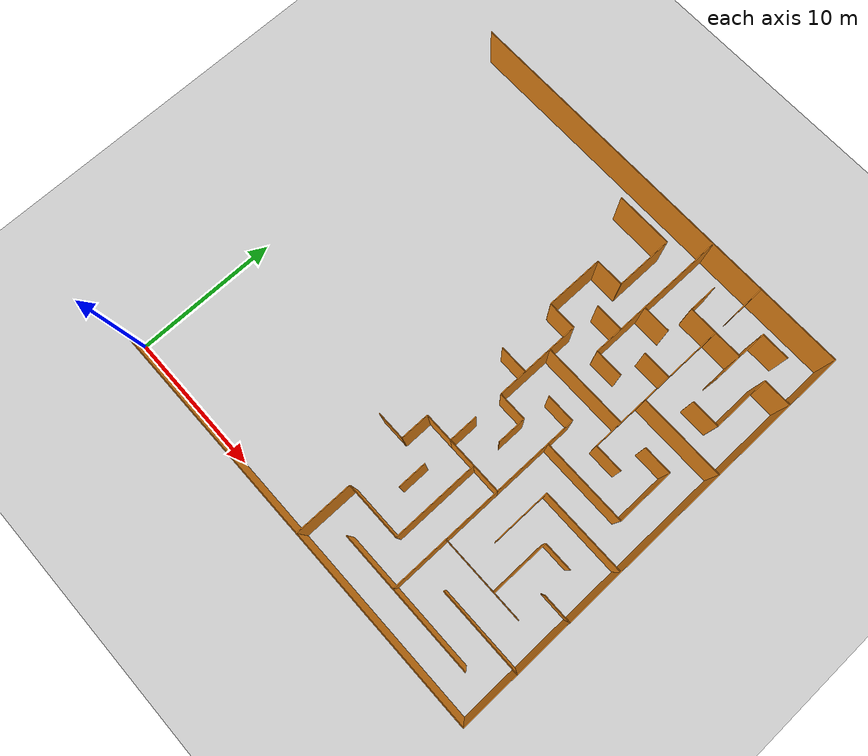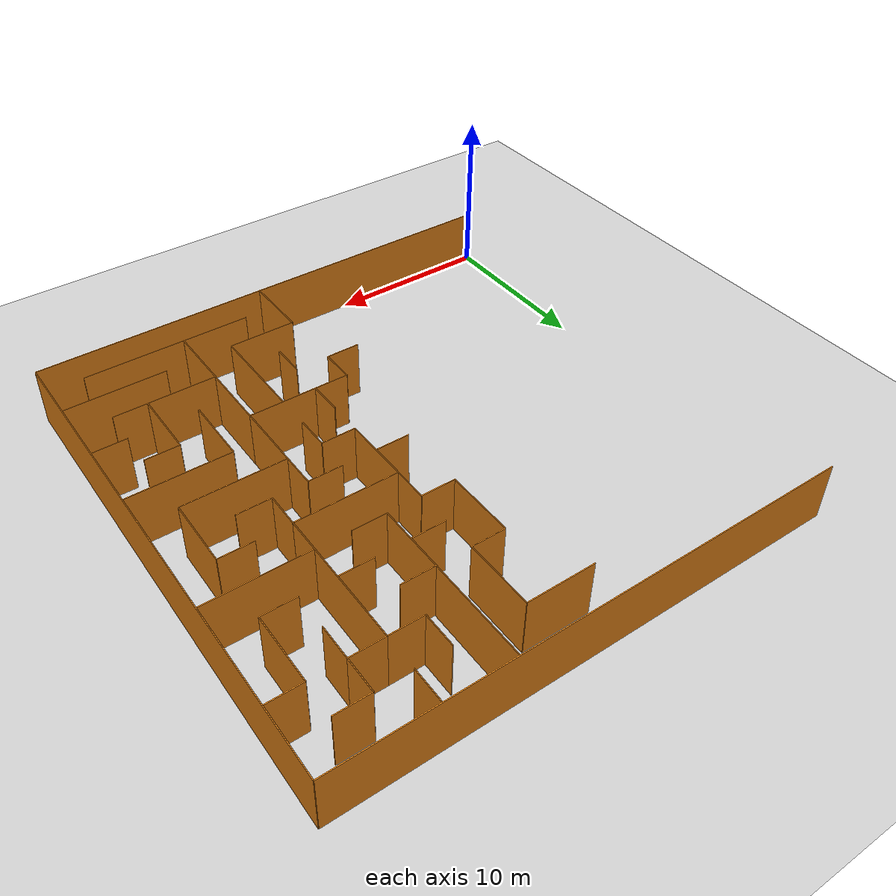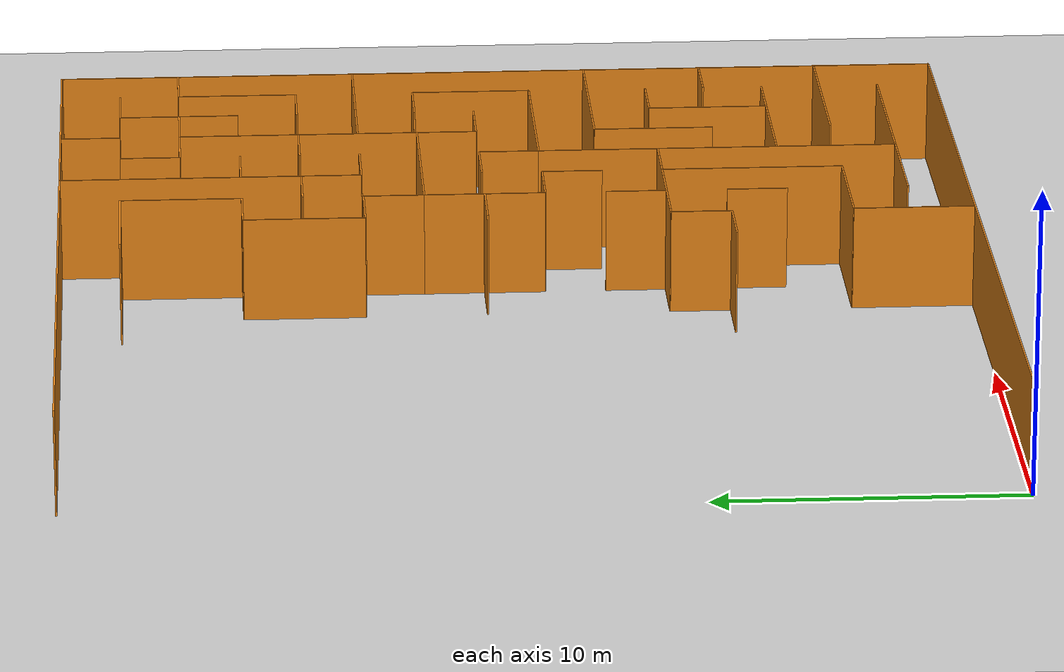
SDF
<sdf version="1.6">
 <world name="default">
  <model name="box_115">
   <pose>27.0 12.0 1.75 0 0 -3.141592653589793</pose>
   <link name="link">
    <inertial>
     <mass>1</mass>
     <inertia><ixx>0</ixx><ixy>0</ixy><ixz>0</ixz><iyy>0</iyy><iyz>0</iyz><izz>0</izz></inertia>
    </inertial>
    <collision name="collision"><geometry><box><size>6.0 0.05 3.5</size></box></geometry></collision>
    <visual name="visual">
     <geometry><box><size>6.0 0.05 3.5</size></box></geometry>
     <material>
      <script><name>Gazebo/Orange</name><uri>file://media/materials/scripts/gazebo.material</uri></script>
     </material>
    </visual>
   </link>
   <static>1</static>
  </model>
  <model name="box_114">
   <pose>24.0 10.0 1.75 0 0 -1.5707963267948966</pose>
   <link name="link">
    <inertial>
     <mass>1</mass>
     <inertia><ixx>0</ixx><ixy>0</ixy><ixz>0</ixz><iyy>0</iyy><iyz>0</iyz><izz>0</izz></inertia>
    </inertial>
    <collision name="collision"><geometry><box><size>4.0 0.05 3.5</size></box></geometry></collision>
    <visual name="visual">
     <geometry><box><size>4.0 0.05 3.5</size></box></geometry>
     <material>
      <script><name>Gazebo/Orange</name><uri>file://media/materials/scripts/gazebo.material</uri></script>
     </material>
    </visual>
   </link>
   <static>1</static>
  </model>
  <model name="box_113">
   <pose>27.0 10.0 1.75 0 0 -3.141592653589793</pose>
   <link name="link">
    <inertial>
     <mass>1</mass>
     <inertia><ixx>0</ixx><ixy>0</ixy><ixz>0</ixz><iyy>0</iyy><iyz>0</iyz><izz>0</izz></inertia>
    </inertial>
    <collision name="collision"><geometry><box><size>2.0 0.05 3.5</size></box></geometry></collision>
    <visual name="visual">
     <geometry><box><size>2.0 0.05 3.5</size></box></geometry>
     <material>
      <script><name>Gazebo/Orange</name><uri>file://media/materials/scripts/gazebo.material</uri></script>
     </material>
    </visual>
   </link>
   <static>1</static>
  </model>
  <model name="box_112">
   <pose>26.0 8.0 1.75 0 0 -1.5707963267948966</pose>
   <link name="link">
    <inertial>
     <mass>1</mass>
     <inertia><ixx>0</ixx><ixy>0</ixy><ixz>0</ixz><iyy>0</iyy><iyz>0</iyz><izz>0</izz></inertia>
    </inertial>
    <collision name="collision"><geometry><box><size>4.0 0.05 3.5</size></box></geometry></collision>
    <visual name="visual">
     <geometry><box><size>4.0 0.05 3.5</size></box></geometry>
     <material>
      <script><name>Gazebo/Orange</name><uri>file://media/materials/scripts/gazebo.material</uri></script>
     </material>
    </visual>
   </link>
   <static>1</static>
  </model>
  <model name="box_111">
   <pose>29.0 8.0 1.75 0 0 -0.0</pose>
   <link name="link">
    <inertial>
     <mass>1</mass>
     <inertia><ixx>0</ixx><ixy>0</ixy><ixz>0</ixz><iyy>0</iyy><iyz>0</iyz><izz>0</izz></inertia>
    </inertial>
    <collision name="collision"><geometry><box><size>2.0 0.05 3.5</size></box></geometry></collision>
    <visual name="visual">
     <geometry><box><size>2.0 0.05 3.5</size></box></geometry>
     <material>
      <script><name>Gazebo/Orange</name><uri>file://media/materials/scripts/gazebo.material</uri></script>
     </material>
    </visual>
   </link>
   <static>1</static>
  </model>
  <model name="box_110">
   <pose>27.0 4.0 1.75 0 0 -0.0</pose>
   <link name="link">
    <inertial>
     <mass>1</mass>
     <inertia><ixx>0</ixx><ixy>0</ixy><ixz>0</ixz><iyy>0</iyy><iyz>0</iyz><izz>0</izz></inertia>
    </inertial>
    <collision name="collision"><geometry><box><size>6.0 0.05 3.5</size></box></geometry></collision>
    <visual name="visual">
     <geometry><box><size>6.0 0.05 3.5</size></box></geometry>
     <material>
      <script><name>Gazebo/Orange</name><uri>file://media/materials/scripts/gazebo.material</uri></script>
     </material>
    </visual>
   </link>
   <static>1</static>
  </model>
  <model name="box_109">
   <pose>25.0 6.0 1.75 0 0 -3.141592653589793</pose>
   <link name="link">
    <inertial>
     <mass>1</mass>
     <inertia><ixx>0</ixx><ixy>0</ixy><ixz>0</ixz><iyy>0</iyy><iyz>0</iyz><izz>0</izz></inertia>
    </inertial>
    <collision name="collision"><geometry><box><size>6.0 0.05 3.5</size></box></geometry></collision>
    <visual name="visual">
     <geometry><box><size>6.0 0.05 3.5</size></box></geometry>
     <material>
      <script><name>Gazebo/Orange</name><uri>file://media/materials/scripts/gazebo.material</uri></script>
     </material>
    </visual>
   </link>
   <static>1</static>
  </model>
  <model name="box_108">
   <pose>22.0 6.0 1.75 0 0 1.5707963267948966</pose>
   <link name="link">
    <inertial>
     <mass>1</mass>
     <inertia><ixx>0</ixx><ixy>0</ixy><ixz>0</ixz><iyy>0</iyy><iyz>0</iyz><izz>0</izz></inertia>
    </inertial>
    <collision name="collision"><geometry><box><size>8.0 0.05 3.5</size></box></geometry></collision>
    <visual name="visual">
     <geometry><box><size>8.0 0.05 3.5</size></box></geometry>
     <material>
      <script><name>Gazebo/Orange</name><uri>file://media/materials/scripts/gazebo.material</uri></script>
     </material>
    </visual>
   </link>
   <static>1</static>
  </model>
  <model name="box_107">
   <pose>23.0 2.0 1.75 0 0 -3.141592653589793</pose>
   <link name="link">
    <inertial>
     <mass>1</mass>
     <inertia><ixx>0</ixx><ixy>0</ixy><ixz>0</ixz><iyy>0</iyy><iyz>0</iyz><izz>0</izz></inertia>
    </inertial>
    <collision name="collision"><geometry><box><size>10.0 0.05 3.5</size></box></geometry></collision>
    <visual name="visual">
     <geometry><box><size>10.0 0.05 3.5</size></box></geometry>
     <material>
      <script><name>Gazebo/Orange</name><uri>file://media/materials/scripts/gazebo.material</uri></script>
     </material>
    </visual>
   </link>
   <static>1</static>
  </model>
  <model name="box_106">
   <pose>20.0 7.0 1.75 0 0 -1.5707963267948966</pose>
   <link name="link">
    <inertial>
     <mass>1</mass>
     <inertia><ixx>0</ixx><ixy>0</ixy><ixz>0</ixz><iyy>0</iyy><iyz>0</iyz><izz>0</izz></inertia>
    </inertial>
    <collision name="collision"><geometry><box><size>6.0 0.05 3.5</size></box></geometry></collision>
    <visual name="visual">
     <geometry><box><size>6.0 0.05 3.5</size></box></geometry>
     <material>
      <script><name>Gazebo/Orange</name><uri>file://media/materials/scripts/gazebo.material</uri></script>
     </material>
    </visual>
   </link>
   <static>1</static>
  </model>
  <model name="box_105">
   <pose>18.0 4.0 1.75 0 0 -3.141592653589793</pose>
   <link name="link">
    <inertial>
     <mass>1</mass>
     <inertia><ixx>0</ixx><ixy>0</ixy><ixz>0</ixz><iyy>0</iyy><iyz>0</iyz><izz>0</izz></inertia>
    </inertial>
    <collision name="collision"><geometry><box><size>4.0 0.05 3.5</size></box></geometry></collision>
    <visual name="visual">
     <geometry><box><size>4.0 0.05 3.5</size></box></geometry>
     <material>
      <script><name>Gazebo/Orange</name><uri>file://media/materials/scripts/gazebo.material</uri></script>
     </material>
    </visual>
   </link>
   <static>1</static>
  </model>
  <model name="box_104">
   <pose>16.0 2.0 1.75 0 0 -1.5707963267948966</pose>
   <link name="link">
    <inertial>
     <mass>1</mass>
     <inertia><ixx>0</ixx><ixy>0</ixy><ixz>0</ixz><iyy>0</iyy><iyz>0</iyz><izz>0</izz></inertia>
    </inertial>
    <collision name="collision"><geometry><box><size>4.0 0.05 3.5</size></box></geometry></collision>
    <visual name="visual">
     <geometry><box><size>4.0 0.05 3.5</size></box></geometry>
     <material>
      <script><name>Gazebo/Orange</name><uri>file://media/materials/scripts/gazebo.material</uri></script>
     </material>
    </visual>
   </link>
   <static>1</static>
  </model>
  <model name="box_94">
   <pose>17.0 16.0 1.75 0 0 -0.0</pose>
   <link name="link">
    <inertial>
     <mass>1</mass>
     <inertia><ixx>0</ixx><ixy>0</ixy><ixz>0</ixz><iyy>0</iyy><iyz>0</iyz><izz>0</izz></inertia>
    </inertial>
    <collision name="collision"><geometry><box><size>2.0 0.05 3.5</size></box></geometry></collision>
    <visual name="visual">
     <geometry><box><size>2.0 0.05 3.5</size></box></geometry>
     <material>
      <script><name>Gazebo/Orange</name><uri>file://media/materials/scripts/gazebo.material</uri></script>
     </material>
    </visual>
   </link>
   <static>1</static>
  </model>
  <model name="box_79">
   <pose>18.0 7.0 1.75 0 0 -1.5707963267948966</pose>
   <link name="link">
    <inertial>
     <mass>1</mass>
     <inertia><ixx>0</ixx><ixy>0</ixy><ixz>0</ixz><iyy>0</iyy><iyz>0</iyz><izz>0</izz></inertia>
    </inertial>
    <collision name="collision"><geometry><box><size>2.0 0.05 3.5</size></box></geometry></collision>
    <visual name="visual">
     <geometry><box><size>2.0 0.05 3.5</size></box></geometry>
     <material>
      <script><name>Gazebo/Orange</name><uri>file://media/materials/scripts/gazebo.material</uri></script>
     </material>
    </visual>
   </link>
   <static>1</static>
  </model>
  <model name="box_74">
   <pose>15.0 8.0 1.75 0 0 -0.0</pose>
   <link name="link">
    <inertial>
     <mass>1</mass>
     <inertia><ixx>0</ixx><ixy>0</ixy><ixz>0</ixz><iyy>0</iyy><iyz>0</iyz><izz>0</izz></inertia>
    </inertial>
    <collision name="collision"><geometry><box><size>2.0 0.05 3.5</size></box></geometry></collision>
    <visual name="visual">
     <geometry><box><size>2.0 0.05 3.5</size></box></geometry>
     <material>
      <script><name>Gazebo/Orange</name><uri>file://media/materials/scripts/gazebo.material</uri></script>
     </material>
    </visual>
   </link>
   <static>1</static>
  </model>
  <model name="box_73">
   <pose>16.0 9.0 1.75 0 0 1.5707963267948966</pose>
   <link name="link">
    <inertial>
     <mass>1</mass>
     <inertia><ixx>0</ixx><ixy>0</ixy><ixz>0</ixz><iyy>0</iyy><iyz>0</iyz><izz>0</izz></inertia>
    </inertial>
    <collision name="collision"><geometry><box><size>2.0 0.05 3.5</size></box></geometry></collision>
    <visual name="visual">
     <geometry><box><size>2.0 0.05 3.5</size></box></geometry>
     <material>
      <script><name>Gazebo/Orange</name><uri>file://media/materials/scripts/gazebo.material</uri></script>
     </material>
    </visual>
   </link>
   <static>1</static>
  </model>
  <model name="box_72">
   <pose>17.0 10.0 1.75 0 0 -0.0</pose>
   <link name="link">
    <inertial>
     <mass>1</mass>
     <inertia><ixx>0</ixx><ixy>0</ixy><ixz>0</ixz><iyy>0</iyy><iyz>0</iyz><izz>0</izz></inertia>
    </inertial>
    <collision name="collision"><geometry><box><size>2.0 0.05 3.5</size></box></geometry></collision>
    <visual name="visual">
     <geometry><box><size>2.0 0.05 3.5</size></box></geometry>
     <material>
      <script><name>Gazebo/Orange</name><uri>file://media/materials/scripts/gazebo.material</uri></script>
     </material>
    </visual>
   </link>
   <static>1</static>
  </model>
  <model name="box_71">
   <pose>18.0 11.0 1.75 0 0 -1.5707963267948966</pose>
   <link name="link">
    <inertial>
     <mass>1</mass>
     <inertia><ixx>0</ixx><ixy>0</ixy><ixz>0</ixz><iyy>0</iyy><iyz>0</iyz><izz>0</izz></inertia>
    </inertial>
    <collision name="collision"><geometry><box><size>2.0 0.05 3.5</size></box></geometry></collision>
    <visual name="visual">
     <geometry><box><size>2.0 0.05 3.5</size></box></geometry>
     <material>
      <script><name>Gazebo/Orange</name><uri>file://media/materials/scripts/gazebo.material</uri></script>
     </material>
    </visual>
   </link>
   <static>1</static>
  </model>
  <model name="box_70">
   <pose>20.0 10.0 1.75 0 0 -0.0</pose>
   <link name="link">
    <inertial>
     <mass>1</mass>
     <inertia><ixx>0</ixx><ixy>0</ixy><ixz>0</ixz><iyy>0</iyy><iyz>0</iyz><izz>0</izz></inertia>
    </inertial>
    <collision name="collision"><geometry><box><size>4.0 0.05 3.5</size></box></geometry></collision>
    <visual name="visual">
     <geometry><box><size>4.0 0.05 3.5</size></box></geometry>
     <material>
      <script><name>Gazebo/Orange</name><uri>file://media/materials/scripts/gazebo.material</uri></script>
     </material>
    </visual>
   </link>
   <static>1</static>
  </model>
  <model name="box_69">
   <pose>22.0 12.0 1.75 0 0 1.5707963267948966</pose>
   <link name="link">
    <inertial>
     <mass>1</mass>
     <inertia><ixx>0</ixx><ixy>0</ixy><ixz>0</ixz><iyy>0</iyy><iyz>0</iyz><izz>0</izz></inertia>
    </inertial>
    <collision name="collision"><geometry><box><size>4.0 0.05 3.5</size></box></geometry></collision>
    <visual name="visual">
     <geometry><box><size>4.0 0.05 3.5</size></box></geometry>
     <material>
      <script><name>Gazebo/Orange</name><uri>file://media/materials/scripts/gazebo.material</uri></script>
     </material>
    </visual>
   </link>
   <static>1</static>
  </model>
  <model name="box_68">
   <pose>20.0 13.0 1.75 0 0 1.5707963267948966</pose>
   <link name="link">
    <inertial>
     <mass>1</mass>
     <inertia><ixx>0</ixx><ixy>0</ixy><ixz>0</ixz><iyy>0</iyy><iyz>0</iyz><izz>0</izz></inertia>
    </inertial>
    <collision name="collision"><geometry><box><size>2.0 0.05 3.5</size></box></geometry></collision>
    <visual name="visual">
     <geometry><box><size>2.0 0.05 3.5</size></box></geometry>
     <material>
      <script><name>Gazebo/Orange</name><uri>file://media/materials/scripts/gazebo.material</uri></script>
     </material>
    </visual>
   </link>
   <static>1</static>
  </model>
  <model name="box_67">
   <pose>19.0 14.0 1.75 0 0 -3.141592653589793</pose>
   <link name="link">
    <inertial>
     <mass>1</mass>
     <inertia><ixx>0</ixx><ixy>0</ixy><ixz>0</ixz><iyy>0</iyy><iyz>0</iyz><izz>0</izz></inertia>
    </inertial>
    <collision name="collision"><geometry><box><size>2.0 0.05 3.5</size></box></geometry></collision>
    <visual name="visual">
     <geometry><box><size>2.0 0.05 3.5</size></box></geometry>
     <material>
      <script><name>Gazebo/Orange</name><uri>file://media/materials/scripts/gazebo.material</uri></script>
     </material>
    </visual>
   </link>
   <static>1</static>
  </model>
  <model name="box_66">
   <pose>18.0 16.0 1.75 0 0 1.5707963267948966</pose>
   <link name="link">
    <inertial>
     <mass>1</mass>
     <inertia><ixx>0</ixx><ixy>0</ixy><ixz>0</ixz><iyy>0</iyy><iyz>0</iyz><izz>0</izz></inertia>
    </inertial>
    <collision name="collision"><geometry><box><size>4.0 0.05 3.5</size></box></geometry></collision>
    <visual name="visual">
     <geometry><box><size>4.0 0.05 3.5</size></box></geometry>
     <material>
      <script><name>Gazebo/Orange</name><uri>file://media/materials/scripts/gazebo.material</uri></script>
     </material>
    </visual>
   </link>
   <static>1</static>
  </model>
  <model name="box_65">
   <pose>25.0 16.0 1.75 0 0 -3.141592653589793</pose>
   <link name="link">
    <inertial>
     <mass>1</mass>
     <inertia><ixx>0</ixx><ixy>0</ixy><ixz>0</ixz><iyy>0</iyy><iyz>0</iyz><izz>0</izz></inertia>
    </inertial>
    <collision name="collision"><geometry><box><size>2.0 0.05 3.5</size></box></geometry></collision>
    <visual name="visual">
     <geometry><box><size>2.0 0.05 3.5</size></box></geometry>
     <material>
      <script><name>Gazebo/Orange</name><uri>file://media/materials/scripts/gazebo.material</uri></script>
     </material>
    </visual>
   </link>
   <static>1</static>
  </model>
  <model name="box_64">
   <pose>24.0 17.0 1.75 0 0 1.5707963267948966</pose>
   <link name="link">
    <inertial>
     <mass>1</mass>
     <inertia><ixx>0</ixx><ixy>0</ixy><ixz>0</ixz><iyy>0</iyy><iyz>0</iyz><izz>0</izz></inertia>
    </inertial>
    <collision name="collision"><geometry><box><size>2.0 0.05 3.5</size></box></geometry></collision>
    <visual name="visual">
     <geometry><box><size>2.0 0.05 3.5</size></box></geometry>
     <material>
      <script><name>Gazebo/Orange</name><uri>file://media/materials/scripts/gazebo.material</uri></script>
     </material>
    </visual>
   </link>
   <static>1</static>
  </model>
  <model name="box_63">
   <pose>21.0 16.0 1.75 0 0 -0.0</pose>
   <link name="link">
    <inertial>
     <mass>1</mass>
     <inertia><ixx>0</ixx><ixy>0</ixy><ixz>0</ixz><iyy>0</iyy><iyz>0</iyz><izz>0</izz></inertia>
    </inertial>
    <collision name="collision"><geometry><box><size>2.0 0.05 3.5</size></box></geometry></collision>
    <visual name="visual">
     <geometry><box><size>2.0 0.05 3.5</size></box></geometry>
     <material>
      <script><name>Gazebo/Orange</name><uri>file://media/materials/scripts/gazebo.material</uri></script>
     </material>
    </visual>
   </link>
   <static>1</static>
  </model>
  <model name="box_62">
   <pose>22.0 15.0 1.75 0 0 -1.5707963267948966</pose>
   <link name="link">
    <inertial>
     <mass>1</mass>
     <inertia><ixx>0</ixx><ixy>0</ixy><ixz>0</ixz><iyy>0</iyy><iyz>0</iyz><izz>0</izz></inertia>
    </inertial>
    <collision name="collision"><geometry><box><size>2.0 0.05 3.5</size></box></geometry></collision>
    <visual name="visual">
     <geometry><box><size>2.0 0.05 3.5</size></box></geometry>
     <material>
      <script><name>Gazebo/Orange</name><uri>file://media/materials/scripts/gazebo.material</uri></script>
     </material>
    </visual>
   </link>
   <static>1</static>
  </model>
  <model name="box_61">
   <pose>25.0 14.0 1.75 0 0 -0.0</pose>
   <link name="link">
    <inertial>
     <mass>1</mass>
     <inertia><ixx>0</ixx><ixy>0</ixy><ixz>0</ixz><iyy>0</iyy><iyz>0</iyz><izz>0</izz></inertia>
    </inertial>
    <collision name="collision"><geometry><box><size>6.0 0.05 3.5</size></box></geometry></collision>
    <visual name="visual">
     <geometry><box><size>6.0 0.05 3.5</size></box></geometry>
     <material>
      <script><name>Gazebo/Orange</name><uri>file://media/materials/scripts/gazebo.material</uri></script>
     </material>
    </visual>
   </link>
   <static>1</static>
  </model>
  <model name="box_60">
   <pose>28.0 16.0 1.75 0 0 1.5707963267948966</pose>
   <link name="link">
    <inertial>
     <mass>1</mass>
     <inertia><ixx>0</ixx><ixy>0</ixy><ixz>0</ixz><iyy>0</iyy><iyz>0</iyz><izz>0</izz></inertia>
    </inertial>
    <collision name="collision"><geometry><box><size>4.0 0.05 3.5</size></box></geometry></collision>
    <visual name="visual">
     <geometry><box><size>4.0 0.05 3.5</size></box></geometry>
     <material>
      <script><name>Gazebo/Orange</name><uri>file://media/materials/scripts/gazebo.material</uri></script>
     </material>
    </visual>
   </link>
   <static>1</static>
  </model>
  <model name="box_59">
   <pose>27.0 18.0 1.75 0 0 -3.141592653589793</pose>
   <link name="link">
    <inertial>
     <mass>1</mass>
     <inertia><ixx>0</ixx><ixy>0</ixy><ixz>0</ixz><iyy>0</iyy><iyz>0</iyz><izz>0</izz></inertia>
    </inertial>
    <collision name="collision"><geometry><box><size>2.0 0.05 3.5</size></box></geometry></collision>
    <visual name="visual">
     <geometry><box><size>2.0 0.05 3.5</size></box></geometry>
     <material>
      <script><name>Gazebo/Orange</name><uri>file://media/materials/scripts/gazebo.material</uri></script>
     </material>
    </visual>
   </link>
   <static>1</static>
  </model>
  <model name="box_58">
   <pose>27.0 20.0 1.75 0 0 -3.141592653589793</pose>
   <link name="link">
    <inertial>
     <mass>1</mass>
     <inertia><ixx>0</ixx><ixy>0</ixy><ixz>0</ixz><iyy>0</iyy><iyz>0</iyz><izz>0</izz></inertia>
    </inertial>
    <collision name="collision"><geometry><box><size>6.0 0.05 3.5</size></box></geometry></collision>
    <visual name="visual">
     <geometry><box><size>6.0 0.05 3.5</size></box></geometry>
     <material>
      <script><name>Gazebo/Orange</name><uri>file://media/materials/scripts/gazebo.material</uri></script>
     </material>
    </visual>
   </link>
   <static>1</static>
  </model>
  <model name="box_57">
   <pose>26.0 25.0 1.75 0 0 1.5707963267948966</pose>
   <link name="link">
    <inertial>
     <mass>1</mass>
     <inertia><ixx>0</ixx><ixy>0</ixy><ixz>0</ixz><iyy>0</iyy><iyz>0</iyz><izz>0</izz></inertia>
    </inertial>
    <collision name="collision"><geometry><box><size>2.0 0.05 3.5</size></box></geometry></collision>
    <visual name="visual">
     <geometry><box><size>2.0 0.05 3.5</size></box></geometry>
     <material>
      <script><name>Gazebo/Orange</name><uri>file://media/materials/scripts/gazebo.material</uri></script>
     </material>
    </visual>
   </link>
   <static>1</static>
  </model>
  <model name="box_56">
   <pose>27.0 22.0 1.75 0 0 -0.0</pose>
   <link name="link">
    <inertial>
     <mass>1</mass>
     <inertia><ixx>0</ixx><ixy>0</ixy><ixz>0</ixz><iyy>0</iyy><iyz>0</iyz><izz>0</izz></inertia>
    </inertial>
    <collision name="collision"><geometry><box><size>2.0 0.05 3.5</size></box></geometry></collision>
    <visual name="visual">
     <geometry><box><size>2.0 0.05 3.5</size></box></geometry>
     <material>
      <script><name>Gazebo/Orange</name><uri>file://media/materials/scripts/gazebo.material</uri></script>
     </material>
    </visual>
   </link>
   <static>1</static>
  </model>
  <model name="box_55">
   <pose>28.0 24.0 1.75 0 0 1.5707963267948966</pose>
   <link name="link">
    <inertial>
     <mass>1</mass>
     <inertia><ixx>0</ixx><ixy>0</ixy><ixz>0</ixz><iyy>0</iyy><iyz>0</iyz><izz>0</izz></inertia>
    </inertial>
    <collision name="collision"><geometry><box><size>4.0 0.05 3.5</size></box></geometry></collision>
    <visual name="visual">
     <geometry><box><size>4.0 0.05 3.5</size></box></geometry>
     <material>
      <script><name>Gazebo/Orange</name><uri>file://media/materials/scripts/gazebo.material</uri></script>
     </material>
    </visual>
   </link>
   <static>1</static>
  </model>
  <model name="box_54">
   <pose>29.0 26.0 1.75 0 0 -0.0</pose>
   <link name="link">
    <inertial>
     <mass>1</mass>
     <inertia><ixx>0</ixx><ixy>0</ixy><ixz>0</ixz><iyy>0</iyy><iyz>0</iyz><izz>0</izz></inertia>
    </inertial>
    <collision name="collision"><geometry><box><size>2.0 0.05 3.5</size></box></geometry></collision>
    <visual name="visual">
     <geometry><box><size>2.0 0.05 3.5</size></box></geometry>
     <material>
      <script><name>Gazebo/Orange</name><uri>file://media/materials/scripts/gazebo.material</uri></script>
     </material>
    </visual>
   </link>
   <static>1</static>
  </model>
  <model name="box_53">
   <pose>27.0 28.0 1.75 0 0 -3.141592653589793</pose>
   <link name="link">
    <inertial>
     <mass>1</mass>
     <inertia><ixx>0</ixx><ixy>0</ixy><ixz>0</ixz><iyy>0</iyy><iyz>0</iyz><izz>0</izz></inertia>
    </inertial>
    <collision name="collision"><geometry><box><size>2.0 0.05 3.5</size></box></geometry></collision>
    <visual name="visual">
     <geometry><box><size>2.0 0.05 3.5</size></box></geometry>
     <material>
      <script><name>Gazebo/Orange</name><uri>file://media/materials/scripts/gazebo.material</uri></script>
     </material>
    </visual>
   </link>
   <static>1</static>
  </model>
  <model name="box_52">
   <pose>26.0 27.0 1.75 0 0 -1.5707963267948966</pose>
   <link name="link">
    <inertial>
     <mass>1</mass>
     <inertia><ixx>0</ixx><ixy>0</ixy><ixz>0</ixz><iyy>0</iyy><iyz>0</iyz><izz>0</izz></inertia>
    </inertial>
    <collision name="collision"><geometry><box><size>2.0 0.05 3.5</size></box></geometry></collision>
    <visual name="visual">
     <geometry><box><size>2.0 0.05 3.5</size></box></geometry>
     <material>
      <script><name>Gazebo/Orange</name><uri>file://media/materials/scripts/gazebo.material</uri></script>
     </material>
    </visual>
   </link>
   <static>1</static>
  </model>
  <model name="box_51">
   <pose>25.0 26.0 1.75 0 0 -3.141592653589793</pose>
   <link name="link">
    <inertial>
     <mass>1</mass>
     <inertia><ixx>0</ixx><ixy>0</ixy><ixz>0</ixz><iyy>0</iyy><iyz>0</iyz><izz>0</izz></inertia>
    </inertial>
    <collision name="collision"><geometry><box><size>2.0 0.05 3.5</size></box></geometry></collision>
    <visual name="visual">
     <geometry><box><size>2.0 0.05 3.5</size></box></geometry>
     <material>
      <script><name>Gazebo/Orange</name><uri>file://media/materials/scripts/gazebo.material</uri></script>
     </material>
    </visual>
   </link>
   <static>1</static>
  </model>
  <model name="box_50">
   <pose>24.0 29.0 1.75 0 0 1.5707963267948966</pose>
   <link name="link">
    <inertial>
     <mass>1</mass>
     <inertia><ixx>0</ixx><ixy>0</ixy><ixz>0</ixz><iyy>0</iyy><iyz>0</iyz><izz>0</izz></inertia>
    </inertial>
    <collision name="collision"><geometry><box><size>2.0 0.05 3.5</size></box></geometry></collision>
    <visual name="visual">
     <geometry><box><size>2.0 0.05 3.5</size></box></geometry>
     <material>
      <script><name>Gazebo/Orange</name><uri>file://media/materials/scripts/gazebo.material</uri></script>
     </material>
    </visual>
   </link>
   <static>1</static>
  </model>
  <model name="box_49">
   <pose>23.0 22.0 1.75 0 0 -0.0</pose>
   <link name="link">
    <inertial>
     <mass>1</mass>
     <inertia><ixx>0</ixx><ixy>0</ixy><ixz>0</ixz><iyy>0</iyy><iyz>0</iyz><izz>0</izz></inertia>
    </inertial>
    <collision name="collision"><geometry><box><size>2.0 0.05 3.5</size></box></geometry></collision>
    <visual name="visual">
     <geometry><box><size>2.0 0.05 3.5</size></box></geometry>
     <material>
      <script><name>Gazebo/Orange</name><uri>file://media/materials/scripts/gazebo.material</uri></script>
     </material>
    </visual>
   </link>
   <static>1</static>
  </model>
  <model name="box_48">
   <pose>17.0 20.0 1.75 0 0 -0.0</pose>
   <link name="link">
    <inertial>
     <mass>1</mass>
     <inertia><ixx>0</ixx><ixy>0</ixy><ixz>0</ixz><iyy>0</iyy><iyz>0</iyz><izz>0</izz></inertia>
    </inertial>
    <collision name="collision"><geometry><box><size>2.0 0.05 3.5</size></box></geometry></collision>
    <visual name="visual">
     <geometry><box><size>2.0 0.05 3.5</size></box></geometry>
     <material>
      <script><name>Gazebo/Orange</name><uri>file://media/materials/scripts/gazebo.material</uri></script>
     </material>
    </visual>
   </link>
   <static>1</static>
  </model>
  <model name="box_47">
   <pose>18.0 19.0 1.75 0 0 -1.5707963267948966</pose>
   <link name="link">
    <inertial>
     <mass>1</mass>
     <inertia><ixx>0</ixx><ixy>0</ixy><ixz>0</ixz><iyy>0</iyy><iyz>0</iyz><izz>0</izz></inertia>
    </inertial>
    <collision name="collision"><geometry><box><size>2.0 0.05 3.5</size></box></geometry></collision>
    <visual name="visual">
     <geometry><box><size>2.0 0.05 3.5</size></box></geometry>
     <material>
      <script><name>Gazebo/Orange</name><uri>file://media/materials/scripts/gazebo.material</uri></script>
     </material>
    </visual>
   </link>
   <static>1</static>
  </model>
  <model name="box_46">
   <pose>21.0 18.0 1.75 0 0 -0.0</pose>
   <link name="link">
    <inertial>
     <mass>1</mass>
     <inertia><ixx>0</ixx><ixy>0</ixy><ixz>0</ixz><iyy>0</iyy><iyz>0</iyz><izz>0</izz></inertia>
    </inertial>
    <collision name="collision"><geometry><box><size>6.0 0.05 3.5</size></box></geometry></collision>
    <visual name="visual">
     <geometry><box><size>6.0 0.05 3.5</size></box></geometry>
     <material>
      <script><name>Gazebo/Orange</name><uri>file://media/materials/scripts/gazebo.material</uri></script>
     </material>
    </visual>
   </link>
   <static>1</static>
  </model>
  <model name="box_45">
   <pose>24.0 22.0 1.75 0 0 1.5707963267948966</pose>
   <link name="link">
    <inertial>
     <mass>1</mass>
     <inertia><ixx>0</ixx><ixy>0</ixy><ixz>0</ixz><iyy>0</iyy><iyz>0</iyz><izz>0</izz></inertia>
    </inertial>
    <collision name="collision"><geometry><box><size>8.0 0.05 3.5</size></box></geometry></collision>
    <visual name="visual">
     <geometry><box><size>8.0 0.05 3.5</size></box></geometry>
     <material>
      <script><name>Gazebo/Orange</name><uri>file://media/materials/scripts/gazebo.material</uri></script>
     </material>
    </visual>
   </link>
   <static>1</static>
  </model>
  <model name="box_44">
   <pose>23.0 26.0 1.75 0 0 -3.141592653589793</pose>
   <link name="link">
    <inertial>
     <mass>1</mass>
     <inertia><ixx>0</ixx><ixy>0</ixy><ixz>0</ixz><iyy>0</iyy><iyz>0</iyz><izz>0</izz></inertia>
    </inertial>
    <collision name="collision"><geometry><box><size>2.0 0.05 3.5</size></box></geometry></collision>
    <visual name="visual">
     <geometry><box><size>2.0 0.05 3.5</size></box></geometry>
     <material>
      <script><name>Gazebo/Orange</name><uri>file://media/materials/scripts/gazebo.material</uri></script>
     </material>
    </visual>
   </link>
   <static>1</static>
  </model>
  <model name="box_43">
   <pose>22.0 27.0 1.75 0 0 1.5707963267948966</pose>
   <link name="link">
    <inertial>
     <mass>1</mass>
     <inertia><ixx>0</ixx><ixy>0</ixy><ixz>0</ixz><iyy>0</iyy><iyz>0</iyz><izz>0</izz></inertia>
    </inertial>
    <collision name="collision"><geometry><box><size>2.0 0.05 3.5</size></box></geometry></collision>
    <visual name="visual">
     <geometry><box><size>2.0 0.05 3.5</size></box></geometry>
     <material>
      <script><name>Gazebo/Orange</name><uri>file://media/materials/scripts/gazebo.material</uri></script>
     </material>
    </visual>
   </link>
   <static>1</static>
  </model>
  <model name="box_42">
   <pose>21.0 24.0 1.75 0 0 -3.141592653589793</pose>
   <link name="link">
    <inertial>
     <mass>1</mass>
     <inertia><ixx>0</ixx><ixy>0</ixy><ixz>0</ixz><iyy>0</iyy><iyz>0</iyz><izz>0</izz></inertia>
    </inertial>
    <collision name="collision"><geometry><box><size>2.0 0.05 3.5</size></box></geometry></collision>
    <visual name="visual">
     <geometry><box><size>2.0 0.05 3.5</size></box></geometry>
     <material>
      <script><name>Gazebo/Orange</name><uri>file://media/materials/scripts/gazebo.material</uri></script>
     </material>
    </visual>
   </link>
   <static>1</static>
  </model>
  <model name="box_41">
   <pose>21.0 20.0 1.75 0 0 -0.0</pose>
   <link name="link">
    <inertial>
     <mass>1</mass>
     <inertia><ixx>0</ixx><ixy>0</ixy><ixz>0</ixz><iyy>0</iyy><iyz>0</iyz><izz>0</izz></inertia>
    </inertial>
    <collision name="collision"><geometry><box><size>2.0 0.05 3.5</size></box></geometry></collision>
    <visual name="visual">
     <geometry><box><size>2.0 0.05 3.5</size></box></geometry>
     <material>
      <script><name>Gazebo/Orange</name><uri>file://media/materials/scripts/gazebo.material</uri></script>
     </material>
    </visual>
   </link>
   <static>1</static>
  </model>
  <model name="box_40">
   <pose>19.0 22.0 1.75 0 0 -0.0</pose>
   <link name="link">
    <inertial>
     <mass>1</mass>
     <inertia><ixx>0</ixx><ixy>0</ixy><ixz>0</ixz><iyy>0</iyy><iyz>0</iyz><izz>0</izz></inertia>
    </inertial>
    <collision name="collision"><geometry><box><size>2.0 0.05 3.5</size></box></geometry></collision>
    <visual name="visual">
     <geometry><box><size>2.0 0.05 3.5</size></box></geometry>
     <material>
      <script><name>Gazebo/Orange</name><uri>file://media/materials/scripts/gazebo.material</uri></script>
     </material>
    </visual>
   </link>
   <static>1</static>
  </model>
  <model name="box_39">
   <pose>20.0 25.0 1.75 0 0 1.5707963267948966</pose>
   <link name="link">
    <inertial>
     <mass>1</mass>
     <inertia><ixx>0</ixx><ixy>0</ixy><ixz>0</ixz><iyy>0</iyy><iyz>0</iyz><izz>0</izz></inertia>
    </inertial>
    <collision name="collision"><geometry><box><size>10.0 0.05 3.5</size></box></geometry></collision>
    <visual name="visual">
     <geometry><box><size>10.0 0.05 3.5</size></box></geometry>
     <material>
      <script><name>Gazebo/Orange</name><uri>file://media/materials/scripts/gazebo.material</uri></script>
     </material>
    </visual>
   </link>
   <static>1</static>
  </model>
  <model name="box_25">
   <pose>16.0 22.0 1.75 0 0 1.5707963267948966</pose>
   <link name="link">
    <inertial>
     <mass>1</mass>
     <inertia><ixx>0</ixx><ixy>0</ixy><ixz>0</ixz><iyy>0</iyy><iyz>0</iyz><izz>0</izz></inertia>
    </inertial>
    <collision name="collision"><geometry><box><size>4.0 0.05 3.5</size></box></geometry></collision>
    <visual name="visual">
     <geometry><box><size>4.0 0.05 3.5</size></box></geometry>
     <material>
      <script><name>Gazebo/Orange</name><uri>file://media/materials/scripts/gazebo.material</uri></script>
     </material>
    </visual>
   </link>
   <static>1</static>
  </model>
  <model name="box_24">
   <pose>17.0 24.0 1.75 0 0 -0.0</pose>
   <link name="link">
    <inertial>
     <mass>1</mass>
     <inertia><ixx>0</ixx><ixy>0</ixy><ixz>0</ixz><iyy>0</iyy><iyz>0</iyz><izz>0</izz></inertia>
    </inertial>
    <collision name="collision"><geometry><box><size>2.0 0.05 3.5</size></box></geometry></collision>
    <visual name="visual">
     <geometry><box><size>2.0 0.05 3.5</size></box></geometry>
     <material>
      <script><name>Gazebo/Orange</name><uri>file://media/materials/scripts/gazebo.material</uri></script>
     </material>
    </visual>
   </link>
   <static>1</static>
  </model>
  <model name="box_23">
   <pose>18.0 26.0 1.75 0 0 1.5707963267948966</pose>
   <link name="link">
    <inertial>
     <mass>1</mass>
     <inertia><ixx>0</ixx><ixy>0</ixy><ixz>0</ixz><iyy>0</iyy><iyz>0</iyz><izz>0</izz></inertia>
    </inertial>
    <collision name="collision"><geometry><box><size>4.0 0.05 3.5</size></box></geometry></collision>
    <visual name="visual">
     <geometry><box><size>4.0 0.05 3.5</size></box></geometry>
     <material>
      <script><name>Gazebo/Orange</name><uri>file://media/materials/scripts/gazebo.material</uri></script>
     </material>
    </visual>
   </link>
   <static>1</static>
  </model>
  <model name="box_22">
   <pose>16.0 28.0 1.75 0 0 -3.141592653589793</pose>
   <link name="link">
    <inertial>
     <mass>1</mass>
     <inertia><ixx>0</ixx><ixy>0</ixy><ixz>0</ixz><iyy>0</iyy><iyz>0</iyz><izz>0</izz></inertia>
    </inertial>
    <collision name="collision"><geometry><box><size>4.0 0.05 3.5</size></box></geometry></collision>
    <visual name="visual">
     <geometry><box><size>4.0 0.05 3.5</size></box></geometry>
     <material>
      <script><name>Gazebo/Orange</name><uri>file://media/materials/scripts/gazebo.material</uri></script>
     </material>
    </visual>
   </link>
   <static>1</static>
  </model>
  <model name="box_3">
   <pose>15.0 0.0 1.75 0 0 -0.0</pose>
   <link name="link">
    <inertial>
     <mass>1</mass>
     <inertia><ixx>0</ixx><ixy>0</ixy><ixz>0</ixz><iyy>0</iyy><iyz>0</iyz><izz>0</izz></inertia>
    </inertial>
    <collision name="collision"><geometry><box><size>30.0 0.05 3.5</size></box></geometry></collision>
    <visual name="visual">
     <geometry><box><size>30.0 0.05 3.5</size></box></geometry>
     <material>
      <script><name>Gazebo/Orange</name><uri>file://media/materials/scripts/gazebo.material</uri></script>
     </material>
    </visual>
   </link>
   <static>1</static>
  </model>
  <model name="box_2">
   <pose>30.0 15.0 1.75 0 0 1.5707963267948966</pose>
   <link name="link">
    <inertial>
     <mass>1</mass>
     <inertia><ixx>0</ixx><ixy>0</ixy><ixz>0</ixz><iyy>0</iyy><iyz>0</iyz><izz>0</izz></inertia>
    </inertial>
    <collision name="collision"><geometry><box><size>30.0 0.05 3.5</size></box></geometry></collision>
    <visual name="visual">
     <geometry><box><size>30.0 0.05 3.5</size></box></geometry>
     <material>
      <script><name>Gazebo/Orange</name><uri>file://media/materials/scripts/gazebo.material</uri></script>
     </material>
    </visual>
   </link>
   <static>1</static>
  </model>
  <model name="box_1">
   <pose>15.0 30.0 1.75 0 0 -3.141592653589793</pose>
   <link name="link">
    <inertial>
     <mass>1</mass>
     <inertia><ixx>0</ixx><ixy>0</ixy><ixz>0</ixz><iyy>0</iyy><iyz>0</iyz><izz>0</izz></inertia>
    </inertial>
    <collision name="collision"><geometry><box><size>30.0 0.05 3.5</size></box></geometry></collision>
    <visual name="visual">
     <geometry><box><size>30.0 0.05 3.5</size></box></geometry>
     <material>
      <script><name>Gazebo/Orange</name><uri>file://media/materials/scripts/gazebo.material</uri></script>
     </material>
    </visual>
   </link>
   <static>1</static>
  </model>
  <model name="ground_plane">
   <static>1</static>
   <link name="link">
    <collision name="collision">
     <geometry><plane><normal>0 0 1</normal><size>100 100</size></plane></geometry>
     <surface>
      <contact><collide_bitmask>65535</collide_bitmask></contact>
      <friction><ode><mu>100</mu><mu2>50</mu2></ode></friction>
     </surface>
    </collision>
    <visual name="visual">
     <cast_shadows>0</cast_shadows>
     <geometry><plane><normal>0 0 1</normal><size>100 100</size></plane></geometry>
     <material>
      <script><uri>file://media/materials/scripts/gazebo.material</uri><name>Gazebo/Grey</name></script>
     </material>
    </visual>
   </link>
  </model>
 </world>
</sdf>
